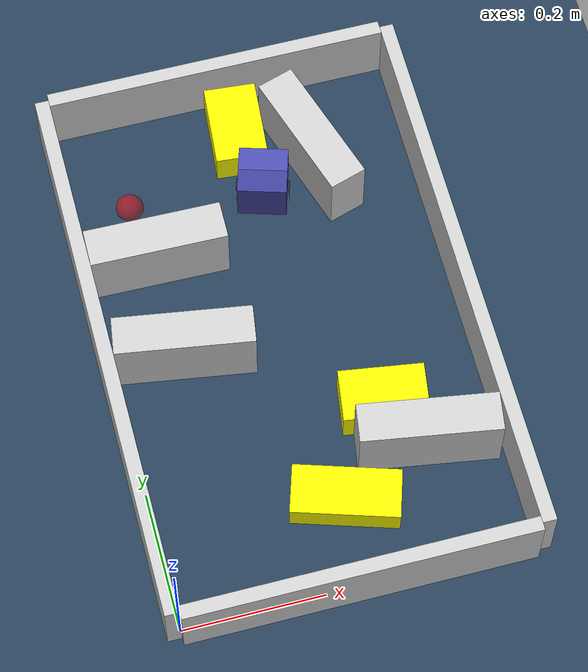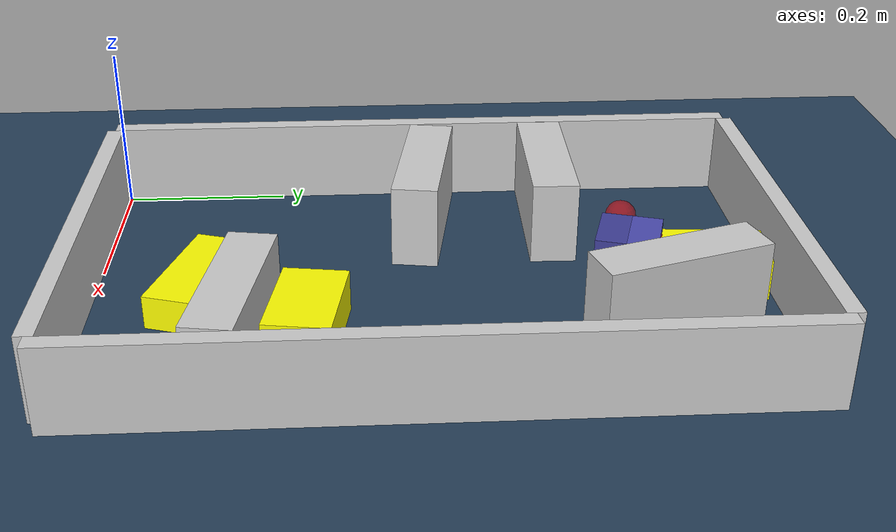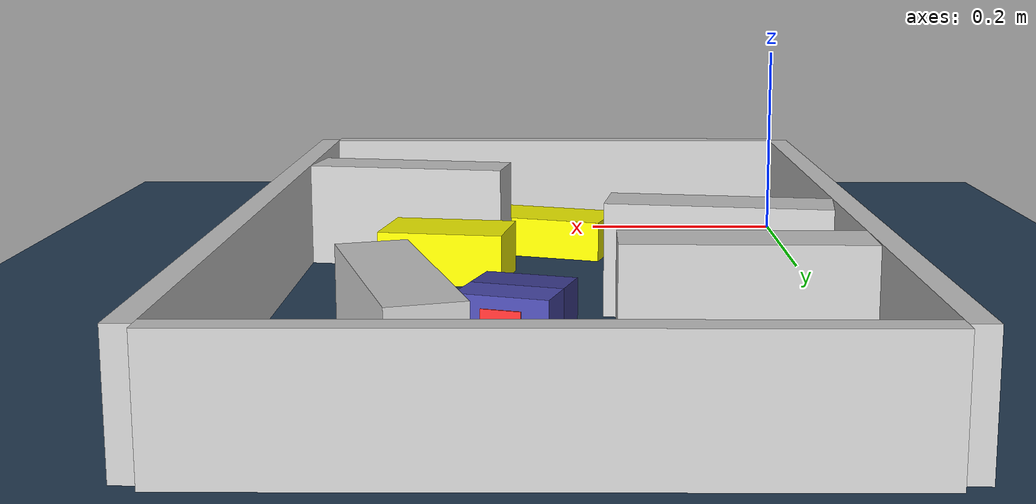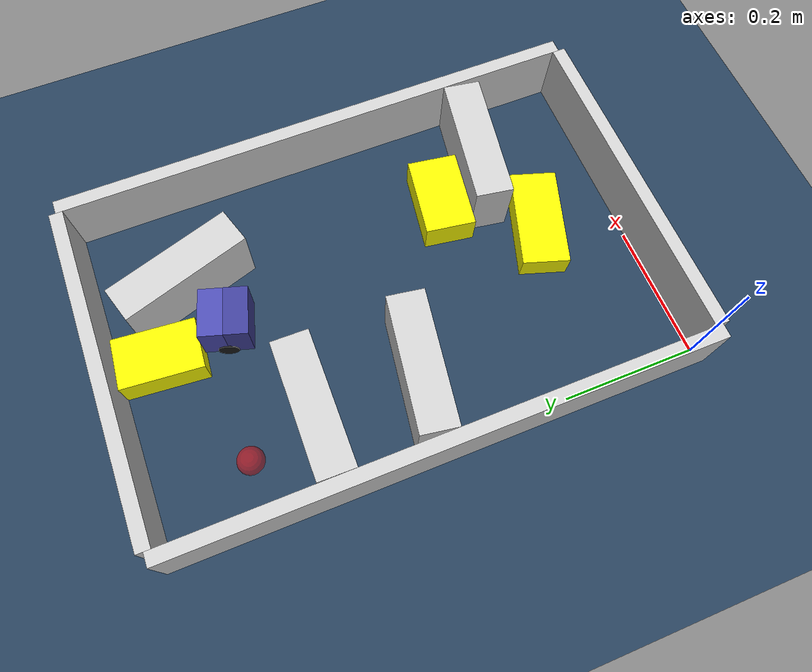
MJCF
<?xml version='1.0' encoding='utf-8'?>
<mujoco model="real_buildable">
  <compiler angle="degree" />
  <option timestep="0.002" integrator="implicitfast" iterations="100" cone="elliptic" />
  <default>
    <geom density="1" />
  </default>
  <asset>
    <texture builtin="gradient" height="3072" rgb1="0.3 0.5 0.7" rgb2="0 0 0" type="skybox" width="512" />
    <texture builtin="checker" height="300" mark="edge" markrgb="0.8 0.8 0.8" name="groundplane" rgb1="0.2 0.3 0.4" rgb2="0.1 0.2 0.3" type="2d" width="300" />
    <material name="groundplane" reflectance="0.2" texrepeat="5 5" texture="groundplane" texuniform="true" />
  </asset>
  <worldbody>
    <light dir="0 0 -1" directional="true" pos="0 0 1.5" />
    <geom name="floor" type="plane" condim="4" friction="0.5 0.005 0.001" material="groundplane" size="0 0 0.05" />
    <body name="walls">
      <geom name="wall_boundary_left" type="box" condim="4" friction="1.0 0.005 0.0001" rgba="0.8 0.8 0.8 1" pos="-0.010000 0.387500 0.050000" euler="0 0 0.000000" size="0.010000 0.397500 0.050000" />
      <geom name="wall_boundary_right" type="box" condim="4" friction="1.0 0.005 0.0001" rgba="0.8 0.8 0.8 1" pos="0.500000 0.387500 0.050000" euler="0 0 0.000000" size="0.010000 0.397500 0.050000" />
      <geom name="wall_boundary_bottom" type="box" condim="4" friction="1.0 0.005 0.0001" rgba="0.8 0.8 0.8 1" pos="0.245000 -0.010000 0.050000" euler="0 0 0.000000" size="0.245000 0.010000 0.050000" />
      <geom name="wall_boundary_top" type="box" condim="4" friction="1.0 0.005 0.0001" rgba="0.8 0.8 0.8 1" pos="0.245000 0.785000 0.050000" euler="0 0 0.000000" size="0.245000 0.010000 0.050000" />
      <geom name="wall_inner_1" type="box" condim="4" friction="1.0 0.005 0.0001" rgba="0.8 0.8 0.8 1" pos="0.389365 0.173598 0.050000" euler="0 0 -9.160550" size="0.097500 0.027500 0.050000" />
      <geom name="wall_inner_2" type="box" condim="4" friction="1.0 0.005 0.0001" rgba="0.8 0.8 0.8 1" pos="0.100574 0.383341 0.050000" euler="0 0 -8.868566" size="0.097500 0.027500 0.050000" />
      <geom name="wall_inner_3" type="box" condim="4" friction="1.0 0.005 0.0001" rgba="0.8 0.8 0.8 1" pos="0.098000 0.537000 0.050000" euler="0 0 179.100000" size="0.097500 0.027500 0.050000" />
      <geom name="wall_inner_4" type="box" condim="4" friction="1.0 0.005 0.0001" rgba="0.8 0.8 0.8 1" pos="0.351000 0.647000 0.050000" euler="0 0 107.500000" size="0.097500 0.027500 0.050000" />
    </body>
    <body name="car" pos="0.26989148176148181 0.6084443001056502 0.01" quat="0.80323128080024175 0 0 0.59566728090772558">
      <freejoint name="car_freejoint" />
      <inertial pos="0 0 0.0375" mass="0.35" diaginertia="0.000266 0.000266 0.000286" />
      <geom name="front_chassis_collision" type="box" pos="0.0175 0 0.0375" size="0.0175 0.035 0.0325" rgba="0.3 0.3 0.7 1" />
      <geom name="rear_chassis_collision" type="box" pos="-0.0175 0 0.0375" size="0.0175 0.035 0.0325" rgba="0.25 0.25 0.6 1" />
      <geom name="front_marker" type="box" pos="0.034 0 0.0505" size="0.002 0.015 0.01" rgba="1 0.2 0.2 1" contype="0" conaffinity="0" />
      <body name="rear_support_body" pos="-0.03 0 0.0025">
        <joint name="rear_caster_joint" type="ball" damping="0.0001" />
        <inertial pos="0 0 0" mass="0.025" diaginertia="0.000001 0.000001 0.000001" />
        <geom name="rear_support" type="sphere" pos="0 0 0" size="0.0025" friction="0 0 0" rgba="0.7 0.1 0.1 1" />
      </body>
      <body name="front_support_body" pos="0.03 0 0.0025">
        <joint name="front_caster_joint" type="ball" damping="0.0001" />
        <inertial pos="0 0 0" mass="0.025" diaginertia="0.000001 0.000001 0.000001" />
        <geom name="front_support" type="sphere" pos="0 0 0" size="0.0025" friction="0 0 0" rgba="0.1 0.7 0.1 1" />
      </body>
      <body name="left_wheel" pos="0 0.0375 0.015">
        <inertial pos="0 0 0" mass="0.05" diaginertia="0.000003 0.000006 0.000003" />
        <joint name="left_wheel_joint" type="hinge" axis="0 1 0" damping="0.01" armature="0.0001" />
        <geom name="left_wheel_collision" type="cylinder" size="0.015 0.0005" euler="90 0 0" rgba="0.1 0.1 0.1 1" />
      </body>
      <body name="right_wheel" pos="0 -0.0375 0.015">
        <inertial pos="0 0 0" mass="0.05" diaginertia="0.000003 0.000006 0.000003" />
        <joint name="right_wheel_joint" type="hinge" axis="0 1 0" damping="0.01" armature="0.0001" />
        <geom name="right_wheel_collision" type="cylinder" size="0.015 0.0005" euler="90 0 0" rgba="0.1 0.1 0.1 1" />
      </body>
    </body>
    <body name="obstacle_0_movable">
      <geom name="obstacle_0_movable" condim="4" pos="0.3474690025804919 0.24661743792137117 0.025000000000000001" friction="1 0.005 0.0001" rgba="1 1 0 1" size="0.037500 0.060000 0.025000" type="box" mass="0.1" quat="0.75827274440495551 0 0 0.65193745489316457" />
      <joint type="free" />
    </body>
    <body name="obstacle_1_movable">
      <geom name="obstacle_1_movable" condim="4" pos="0.25609744858661493 0.71212173028284931 0.025000000000000001" friction="1 0.005 0.0001" rgba="1 1 0 1" size="0.037500 0.060000 0.025000" type="box" mass="0.1" quat="0.99910445125861158 0 0 -0.042311883380778084" />
      <joint type="free" />
    </body>
    <body name="obstacle_2_movable">
      <geom name="obstacle_2_movable" condim="4" pos="0.26042273254285847 0.12267242719083725 0.02" friction="1 0.005 0.0001" rgba="1 1 0 1" size="0.035000 0.075000 0.020000" type="box" mass="0.1" quat="0.80723609614138858 0 0 0.5902286718606703" />
      <joint type="free" />
    </body>
    <site name="goal" type="sphere" pos="0.080000 0.640000 0.0" size="0.02" rgba="1 0 0 0.5" />
  </worldbody>
  <actuator>
    <velocity name="left_wheel_drive" joint="left_wheel_joint" ctrlrange="-25 25" kv="0.75" forcerange="-0.5 0.5" />
    <velocity name="right_wheel_drive" joint="right_wheel_joint" ctrlrange="-25 25" kv="0.75" forcerange="-0.5 0.5" />
  </actuator>
</mujoco>
